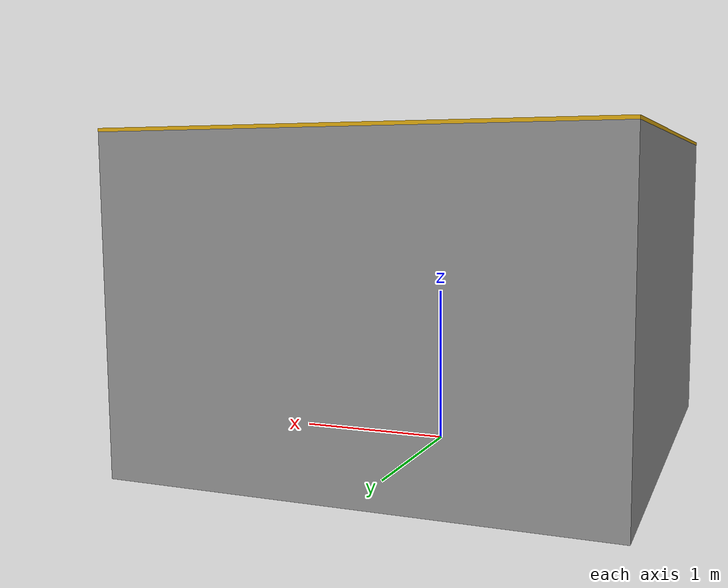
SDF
<?xml version="1.0" ?>
<!-- Obstacle block: 3x3x2m grey concrete barrier (navigation challenge, v1.2 element) -->
<sdf version="1.6">
  <model name="obstacle_block">
    <static>true</static>
    <link name="link">
      <collision name="col">
        <pose>0 0 1.0 0 0 0</pose>
        <geometry><box><size>3 3 2</size></box></geometry>
      </collision>
      <visual name="vis">
        <pose>0 0 1.0 0 0 0</pose>
        <geometry><box><size>3 3 2</size></box></geometry>
        <material>
          <ambient>0.50 0.50 0.50 1</ambient>
          <diffuse>0.55 0.55 0.55 1</diffuse>
          <specular>0.1 0.1 0.1 1</specular>
        </material>
      </visual>
      <!-- Hazard stripe on top -->
      <visual name="stripe">
        <pose>0 0 2.01 0 0 0</pose>
        <geometry><box><size>3 3 0.02</size></box></geometry>
        <material>
          <ambient>0.85 0.65 0.05 1</ambient>
          <diffuse>0.85 0.65 0.05 1</diffuse>
        </material>
      </visual>
    </link>
  </model>
</sdf>
